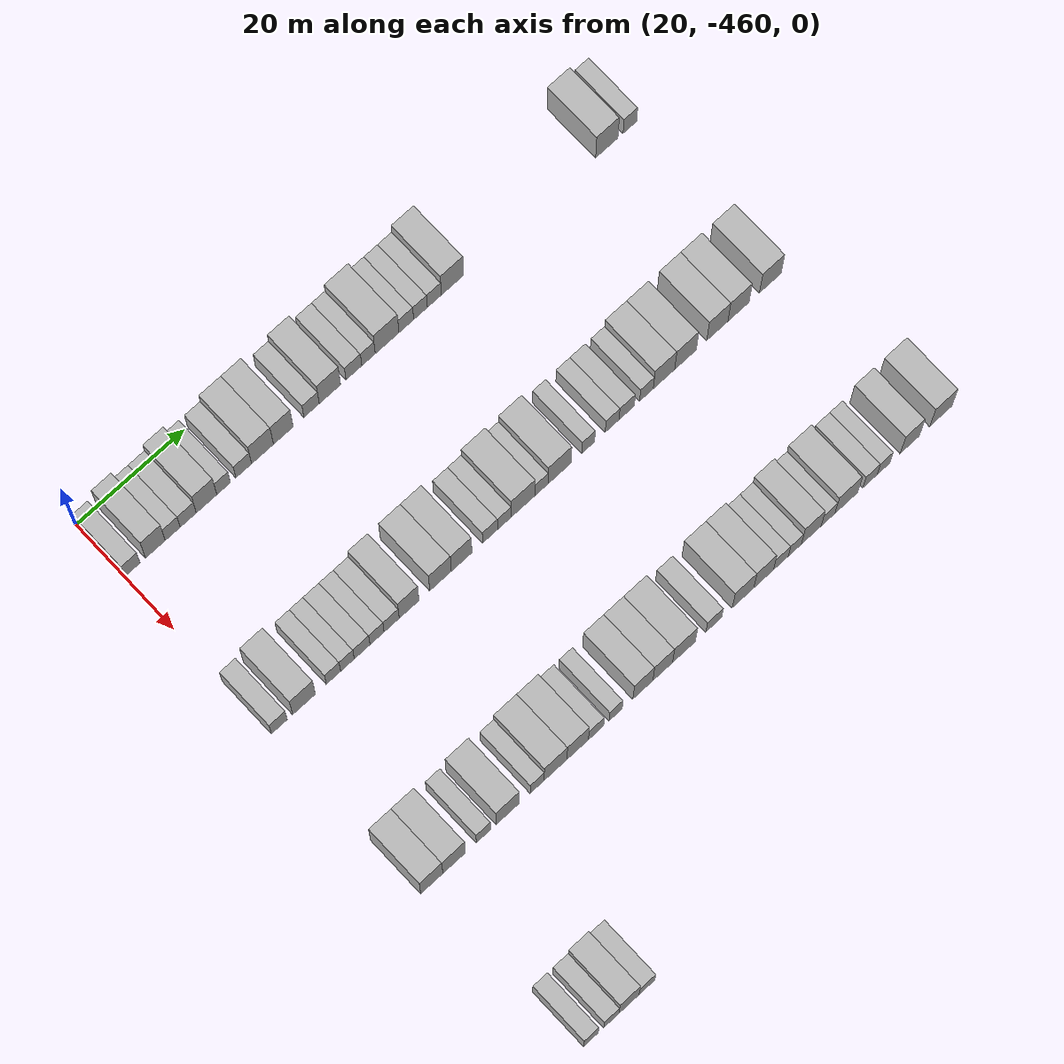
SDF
<sdf version="1.6">
 <world name="default">
  <model name="building_1">
   <static>1</static>
   <pose>25.0000 -458.5745 0 0.000000 0.000000 0.000000</pose>
   <link name="link">
    <pose>0 0 3.00 0 0 0</pose>
    <collision name="collision"><geometry><box><size>10.0000 2.8511 6.0000</size></box></geometry></collision>
    <visual name="visual">
     <cast_shadows>0</cast_shadows>
     <geometry><box><size>10.0000 2.8511 6.0000</size></box></geometry>
     <material>
      <script>
       <uri>model://HANNAS_wall/materials/scripts</uri>
       <uri>model://HANNAS_wall/materials/textures</uri>
       <name>vrc/HANNAS_wall</name>
      </script>
     </material>
    </visual>
   </link>
  </model>
  <model name="building_2">
   <static>1</static>
   <pose>25.0000 -454.3311 0 0.000000 0.000000 0.000000</pose>
   <link name="link">
    <pose>0 0 4.50 0 0 0</pose>
    <collision name="collision"><geometry><box><size>10.0000 3.6358 9.0000</size></box></geometry></collision>
    <visual name="visual">
     <cast_shadows>0</cast_shadows>
     <geometry><box><size>10.0000 3.6358 9.0000</size></box></geometry>
     <material>
      <script>
       <uri>model://HANNAS_wall/materials/scripts</uri>
       <uri>model://HANNAS_wall/materials/textures</uri>
       <name>vrc/HANNAS_wall</name>
      </script>
     </material>
    </visual>
   </link>
  </model>
  <model name="building_3">
   <static>1</static>
   <pose>25.0000 -451.1333 0 0.000000 0.000000 0.000000</pose>
   <link name="link">
    <pose>0 0 3.00 0 0 0</pose>
    <collision name="collision"><geometry><box><size>10.0000 2.7597 6.0000</size></box></geometry></collision>
    <visual name="visual">
     <cast_shadows>0</cast_shadows>
     <geometry><box><size>10.0000 2.7597 6.0000</size></box></geometry>
     <material>
      <script>
       <uri>model://HANNAS_wall/materials/scripts</uri>
       <uri>model://HANNAS_wall/materials/textures</uri>
       <name>vrc/HANNAS_wall</name>
      </script>
     </material>
    </visual>
   </link>
  </model>
  <model name="building_4">
   <static>1</static>
   <pose>25.0000 -448.2670 0 0.000000 0.000000 0.000000</pose>
   <link name="link">
    <pose>0 0 3.00 0 0 0</pose>
    <collision name="collision"><geometry><box><size>10.0000 2.9729 6.0000</size></box></geometry></collision>
    <visual name="visual">
     <cast_shadows>0</cast_shadows>
     <geometry><box><size>10.0000 2.9729 6.0000</size></box></geometry>
     <material>
      <script>
       <uri>model://HANNAS_wall/materials/scripts</uri>
       <uri>model://HANNAS_wall/materials/textures</uri>
       <name>vrc/HANNAS_wall</name>
      </script>
     </material>
    </visual>
   </link>
  </model>
  <model name="building_5">
   <static>1</static>
   <pose>25.0000 -444.8772 0 0.000000 0.000000 0.000000</pose>
   <link name="link">
    <pose>0 0 4.50 0 0 0</pose>
    <collision name="collision"><geometry><box><size>10.0000 3.8066 9.0000</size></box></geometry></collision>
    <visual name="visual">
     <cast_shadows>0</cast_shadows>
     <geometry><box><size>10.0000 3.8066 9.0000</size></box></geometry>
     <material>
      <script>
       <uri>model://HANNAS_wall/materials/scripts</uri>
       <uri>model://HANNAS_wall/materials/textures</uri>
       <name>vrc/HANNAS_wall</name>
      </script>
     </material>
    </visual>
   </link>
  </model>
  <model name="building_6">
   <static>1</static>
   <pose>25.0000 -441.7054 0 0.000000 0.000000 0.000000</pose>
   <link name="link">
    <pose>0 0 3.00 0 0 0</pose>
    <collision name="collision"><geometry><box><size>10.0000 2.5371 6.0000</size></box></geometry></collision>
    <visual name="visual">
     <cast_shadows>0</cast_shadows>
     <geometry><box><size>10.0000 2.5371 6.0000</size></box></geometry>
     <material>
      <script>
       <uri>model://HANNAS_wall/materials/scripts</uri>
       <uri>model://HANNAS_wall/materials/textures</uri>
       <name>vrc/HANNAS_wall</name>
      </script>
     </material>
    </visual>
   </link>
  </model>
  <model name="building_7">
   <static>1</static>
   <pose>25.0000 -437.9740 0 0.000000 0.000000 0.000000</pose>
   <link name="link">
    <pose>0 0 3.00 0 0 0</pose>
    <collision name="collision"><geometry><box><size>10.0000 2.9256 6.0000</size></box></geometry></collision>
    <visual name="visual">
     <cast_shadows>0</cast_shadows>
     <geometry><box><size>10.0000 2.9256 6.0000</size></box></geometry>
     <material>
      <script>
       <uri>model://HANNAS_wall/materials/scripts</uri>
       <uri>model://HANNAS_wall/materials/textures</uri>
       <name>vrc/HANNAS_wall</name>
      </script>
     </material>
    </visual>
   </link>
  </model>
  <model name="building_8">
   <static>1</static>
   <pose>25.0000 -434.4728 0 0.000000 0.000000 0.000000</pose>
   <link name="link">
    <pose>0 0 4.50 0 0 0</pose>
    <collision name="collision"><geometry><box><size>10.0000 4.0769 9.0000</size></box></geometry></collision>
    <visual name="visual">
     <cast_shadows>0</cast_shadows>
     <geometry><box><size>10.0000 4.0769 9.0000</size></box></geometry>
     <material>
      <script>
       <uri>model://HANNAS_wall/materials/scripts</uri>
       <uri>model://HANNAS_wall/materials/textures</uri>
       <name>vrc/HANNAS_wall</name>
      </script>
     </material>
    </visual>
   </link>
  </model>
  <model name="building_9">
   <static>1</static>
   <pose>25.0000 -430.5864 0 0.000000 0.000000 0.000000</pose>
   <link name="link">
    <pose>0 0 4.50 0 0 0</pose>
    <collision name="collision"><geometry><box><size>10.0000 3.6958 9.0000</size></box></geometry></collision>
    <visual name="visual">
     <cast_shadows>0</cast_shadows>
     <geometry><box><size>10.0000 3.6958 9.0000</size></box></geometry>
     <material>
      <script>
       <uri>model://HANNAS_wall/materials/scripts</uri>
       <uri>model://HANNAS_wall/materials/textures</uri>
       <name>vrc/HANNAS_wall</name>
      </script>
     </material>
    </visual>
   </link>
  </model>
  <model name="building_10">
   <static>1</static>
   <pose>25.0000 -425.3063 0 0.000000 0.000000 0.000000</pose>
   <link name="link">
    <pose>0 0 3.00 0 0 0</pose>
    <collision name="collision"><geometry><box><size>10.0000 2.8645 6.0000</size></box></geometry></collision>
    <visual name="visual">
     <cast_shadows>0</cast_shadows>
     <geometry><box><size>10.0000 2.8645 6.0000</size></box></geometry>
     <material>
      <script>
       <uri>model://HANNAS_wall/materials/scripts</uri>
       <uri>model://HANNAS_wall/materials/textures</uri>
       <name>vrc/HANNAS_wall</name>
      </script>
     </material>
    </visual>
   </link>
  </model>
  <model name="building_11">
   <static>1</static>
   <pose>25.0000 -421.8627 0 0.000000 0.000000 0.000000</pose>
   <link name="link">
    <pose>0 0 4.50 0 0 0</pose>
    <collision name="collision"><geometry><box><size>10.0000 4.0225 9.0000</size></box></geometry></collision>
    <visual name="visual">
     <cast_shadows>0</cast_shadows>
     <geometry><box><size>10.0000 4.0225 9.0000</size></box></geometry>
     <material>
      <script>
       <uri>model://HANNAS_wall/materials/scripts</uri>
       <uri>model://HANNAS_wall/materials/textures</uri>
       <name>vrc/HANNAS_wall</name>
      </script>
     </material>
    </visual>
   </link>
  </model>
  <model name="building_12">
   <static>1</static>
   <pose>25.0000 -417.3604 0 0.000000 0.000000 0.000000</pose>
   <link name="link">
    <pose>0 0 3.00 0 0 0</pose>
    <collision name="collision"><geometry><box><size>10.0000 2.9822 6.0000</size></box></geometry></collision>
    <visual name="visual">
     <cast_shadows>0</cast_shadows>
     <geometry><box><size>10.0000 2.9822 6.0000</size></box></geometry>
     <material>
      <script>
       <uri>model://HANNAS_wall/materials/scripts</uri>
       <uri>model://HANNAS_wall/materials/textures</uri>
       <name>vrc/HANNAS_wall</name>
      </script>
     </material>
    </visual>
   </link>
  </model>
  <model name="building_13">
   <static>1</static>
   <pose>25.0000 -414.6050 0 0.000000 0.000000 0.000000</pose>
   <link name="link">
    <pose>0 0 3.00 0 0 0</pose>
    <collision name="collision"><geometry><box><size>10.0000 2.5287 6.0000</size></box></geometry></collision>
    <visual name="visual">
     <cast_shadows>0</cast_shadows>
     <geometry><box><size>10.0000 2.5287 6.0000</size></box></geometry>
     <material>
      <script>
       <uri>model://HANNAS_wall/materials/scripts</uri>
       <uri>model://HANNAS_wall/materials/textures</uri>
       <name>vrc/HANNAS_wall</name>
      </script>
     </material>
    </visual>
   </link>
  </model>
  <model name="building_14">
   <static>1</static>
   <pose>25.0000 -411.1053 0 0.000000 0.000000 0.000000</pose>
   <link name="link">
    <pose>0 0 4.50 0 0 0</pose>
    <collision name="collision"><geometry><box><size>10.0000 4.4707 9.0000</size></box></geometry></collision>
    <visual name="visual">
     <cast_shadows>0</cast_shadows>
     <geometry><box><size>10.0000 4.4707 9.0000</size></box></geometry>
     <material>
      <script>
       <uri>model://HANNAS_wall/materials/scripts</uri>
       <uri>model://HANNAS_wall/materials/textures</uri>
       <name>vrc/HANNAS_wall</name>
      </script>
     </material>
    </visual>
   </link>
  </model>
  <model name="building_15">
   <static>1</static>
   <pose>25.0000 -407.4802 0 0.000000 0.000000 0.000000</pose>
   <link name="link">
    <pose>0 0 3.00 0 0 0</pose>
    <collision name="collision"><geometry><box><size>10.0000 2.7793 6.0000</size></box></geometry></collision>
    <visual name="visual">
     <cast_shadows>0</cast_shadows>
     <geometry><box><size>10.0000 2.7793 6.0000</size></box></geometry>
     <material>
      <script>
       <uri>model://HANNAS_wall/materials/scripts</uri>
       <uri>model://HANNAS_wall/materials/textures</uri>
       <name>vrc/HANNAS_wall</name>
      </script>
     </material>
    </visual>
   </link>
  </model>
  <model name="building_16">
   <static>1</static>
   <pose>25.0000 -404.7872 0 0.000000 0.000000 0.000000</pose>
   <link name="link">
    <pose>0 0 3.00 0 0 0</pose>
    <collision name="collision"><geometry><box><size>10.0000 2.6068 6.0000</size></box></geometry></collision>
    <visual name="visual">
     <cast_shadows>0</cast_shadows>
     <geometry><box><size>10.0000 2.6068 6.0000</size></box></geometry>
     <material>
      <script>
       <uri>model://HANNAS_wall/materials/scripts</uri>
       <uri>model://HANNAS_wall/materials/textures</uri>
       <name>vrc/HANNAS_wall</name>
      </script>
     </material>
    </visual>
   </link>
  </model>
  <model name="building_17">
   <static>1</static>
   <pose>25.0000 -402.1620 0 0.000000 0.000000 0.000000</pose>
   <link name="link">
    <pose>0 0 3.00 0 0 0</pose>
    <collision name="collision"><geometry><box><size>10.0000 2.6436 6.0000</size></box></geometry></collision>
    <visual name="visual">
     <cast_shadows>0</cast_shadows>
     <geometry><box><size>10.0000 2.6436 6.0000</size></box></geometry>
     <material>
      <script>
       <uri>model://HANNAS_wall/materials/scripts</uri>
       <uri>model://HANNAS_wall/materials/textures</uri>
       <name>vrc/HANNAS_wall</name>
      </script>
     </material>
    </visual>
   </link>
  </model>
  <model name="building_18">
   <static>1</static>
   <pose>25.0000 -398.7324 0 0.000000 0.000000 0.000000</pose>
   <link name="link">
    <pose>0 0 4.50 0 0 0</pose>
    <collision name="collision"><geometry><box><size>10.0000 4.2156 9.0000</size></box></geometry></collision>
    <visual name="visual">
     <cast_shadows>0</cast_shadows>
     <geometry><box><size>10.0000 4.2156 9.0000</size></box></geometry>
     <material>
      <script>
       <uri>model://HANNAS_wall/materials/scripts</uri>
       <uri>model://HANNAS_wall/materials/textures</uri>
       <name>vrc/HANNAS_wall</name>
      </script>
     </material>
    </visual>
   </link>
  </model>
  <model name="building_19">
   <static>1</static>
   <pose>25.0000 -369.1829 0 0.000000 0.000000 0.000000</pose>
   <link name="link">
    <pose>0 0 4.50 0 0 0</pose>
    <collision name="collision"><geometry><box><size>10.0000 4.2945 9.0000</size></box></geometry></collision>
    <visual name="visual">
     <cast_shadows>0</cast_shadows>
     <geometry><box><size>10.0000 4.2945 9.0000</size></box></geometry>
     <material>
      <script>
       <uri>model://HANNAS_wall/materials/scripts</uri>
       <uri>model://HANNAS_wall/materials/textures</uri>
       <name>vrc/HANNAS_wall</name>
      </script>
     </material>
    </visual>
   </link>
  </model>
  <model name="building_20">
   <static>1</static>
   <pose>25.0000 -364.7228 0 0.000000 0.000000 0.000000</pose>
   <link name="link">
    <pose>0 0 3.00 0 0 0</pose>
    <collision name="collision"><geometry><box><size>10.0000 2.6258 6.0000</size></box></geometry></collision>
    <visual name="visual">
     <cast_shadows>0</cast_shadows>
     <geometry><box><size>10.0000 2.6258 6.0000</size></box></geometry>
     <material>
      <script>
       <uri>model://HANNAS_wall/materials/scripts</uri>
       <uri>model://HANNAS_wall/materials/textures</uri>
       <name>vrc/HANNAS_wall</name>
      </script>
     </material>
    </visual>
   </link>
  </model>
  <model name="building_231">
   <static>1</static>
   <pose>55.0000 -458.5437 0 0.000000 0.000000 0.000000</pose>
   <link name="link">
    <pose>0 0 3.00 0 0 0</pose>
    <collision name="collision"><geometry><box><size>10.0000 2.9126 6.0000</size></box></geometry></collision>
    <visual name="visual">
     <cast_shadows>0</cast_shadows>
     <geometry><box><size>10.0000 2.9126 6.0000</size></box></geometry>
     <material>
      <script>
       <uri>model://HANNAS_wall/materials/scripts</uri>
       <uri>model://HANNAS_wall/materials/textures</uri>
       <name>vrc/HANNAS_wall</name>
      </script>
     </material>
    </visual>
   </link>
  </model>
  <model name="building_232">
   <static>1</static>
   <pose>55.0000 -453.9892 0 0.000000 0.000000 0.000000</pose>
   <link name="link">
    <pose>0 0 4.50 0 0 0</pose>
    <collision name="collision"><geometry><box><size>10.0000 4.1963 9.0000</size></box></geometry></collision>
    <visual name="visual">
     <cast_shadows>0</cast_shadows>
     <geometry><box><size>10.0000 4.1963 9.0000</size></box></geometry>
     <material>
      <script>
       <uri>model://HANNAS_wall/materials/scripts</uri>
       <uri>model://HANNAS_wall/materials/textures</uri>
       <name>vrc/HANNAS_wall</name>
      </script>
     </material>
    </visual>
   </link>
  </model>
  <model name="building_233">
   <static>1</static>
   <pose>55.0000 -448.5669 0 0.000000 0.000000 0.000000</pose>
   <link name="link">
    <pose>0 0 3.00 0 0 0</pose>
    <collision name="collision"><geometry><box><size>10.0000 2.6485 6.0000</size></box></geometry></collision>
    <visual name="visual">
     <cast_shadows>0</cast_shadows>
     <geometry><box><size>10.0000 2.6485 6.0000</size></box></geometry>
     <material>
      <script>
       <uri>model://HANNAS_wall/materials/scripts</uri>
       <uri>model://HANNAS_wall/materials/textures</uri>
       <name>vrc/HANNAS_wall</name>
      </script>
     </material>
    </visual>
   </link>
  </model>
  <model name="building_234">
   <static>1</static>
   <pose>55.0000 -445.9764 0 0.000000 0.000000 0.000000</pose>
   <link name="link">
    <pose>0 0 3.00 0 0 0</pose>
    <collision name="collision"><geometry><box><size>10.0000 2.5325 6.0000</size></box></geometry></collision>
    <visual name="visual">
     <cast_shadows>0</cast_shadows>
     <geometry><box><size>10.0000 2.5325 6.0000</size></box></geometry>
     <material>
      <script>
       <uri>model://HANNAS_wall/materials/scripts</uri>
       <uri>model://HANNAS_wall/materials/textures</uri>
       <name>vrc/HANNAS_wall</name>
      </script>
     </material>
    </visual>
   </link>
  </model>
  <model name="building_235">
   <static>1</static>
   <pose>55.0000 -443.2516 0 0.000000 0.000000 0.000000</pose>
   <link name="link">
    <pose>0 0 3.00 0 0 0</pose>
    <collision name="collision"><geometry><box><size>10.0000 2.9170 6.0000</size></box></geometry></collision>
    <visual name="visual">
     <cast_shadows>0</cast_shadows>
     <geometry><box><size>10.0000 2.9170 6.0000</size></box></geometry>
     <material>
      <script>
       <uri>model://HANNAS_wall/materials/scripts</uri>
       <uri>model://HANNAS_wall/materials/textures</uri>
       <name>vrc/HANNAS_wall</name>
      </script>
     </material>
    </visual>
   </link>
  </model>
  <model name="building_236">
   <static>1</static>
   <pose>55.0000 -440.4904 0 0.000000 0.000000 0.000000</pose>
   <link name="link">
    <pose>0 0 3.00 0 0 0</pose>
    <collision name="collision"><geometry><box><size>10.0000 2.6053 6.0000</size></box></geometry></collision>
    <visual name="visual">
     <cast_shadows>0</cast_shadows>
     <geometry><box><size>10.0000 2.6053 6.0000</size></box></geometry>
     <material>
      <script>
       <uri>model://HANNAS_wall/materials/scripts</uri>
       <uri>model://HANNAS_wall/materials/textures</uri>
       <name>vrc/HANNAS_wall</name>
      </script>
     </material>
    </visual>
   </link>
  </model>
  <model name="building_237">
   <static>1</static>
   <pose>55.0000 -437.7830 0 0.000000 0.000000 0.000000</pose>
   <link name="link">
    <pose>0 0 3.00 0 0 0</pose>
    <collision name="collision"><geometry><box><size>10.0000 2.8094 6.0000</size></box></geometry></collision>
    <visual name="visual">
     <cast_shadows>0</cast_shadows>
     <geometry><box><size>10.0000 2.8094 6.0000</size></box></geometry>
     <material>
      <script>
       <uri>model://HANNAS_wall/materials/scripts</uri>
       <uri>model://HANNAS_wall/materials/textures</uri>
       <name>vrc/HANNAS_wall</name>
      </script>
     </material>
    </visual>
   </link>
  </model>
  <model name="building_238">
   <static>1</static>
   <pose>55.0000 -434.5364 0 0.000000 0.000000 0.000000</pose>
   <link name="link">
    <pose>0 0 4.50 0 0 0</pose>
    <collision name="collision"><geometry><box><size>10.0000 3.6838 9.0000</size></box></geometry></collision>
    <visual name="visual">
     <cast_shadows>0</cast_shadows>
     <geometry><box><size>10.0000 3.6838 9.0000</size></box></geometry>
     <material>
      <script>
       <uri>model://HANNAS_wall/materials/scripts</uri>
       <uri>model://HANNAS_wall/materials/textures</uri>
       <name>vrc/HANNAS_wall</name>
      </script>
     </material>
    </visual>
   </link>
  </model>
  <model name="building_239">
   <static>1</static>
   <pose>55.0000 -428.6836 0 0.000000 0.000000 0.000000</pose>
   <link name="link">
    <pose>0 0 4.50 0 0 0</pose>
    <collision name="collision"><geometry><box><size>10.0000 4.0217 9.0000</size></box></geometry></collision>
    <visual name="visual">
     <cast_shadows>0</cast_shadows>
     <geometry><box><size>10.0000 4.0217 9.0000</size></box></geometry>
     <material>
      <script>
       <uri>model://HANNAS_wall/materials/scripts</uri>
       <uri>model://HANNAS_wall/materials/textures</uri>
       <name>vrc/HANNAS_wall</name>
      </script>
     </material>
    </visual>
   </link>
  </model>
  <model name="building_240">
   <static>1</static>
   <pose>55.0000 -424.7410 0 0.000000 0.000000 0.000000</pose>
   <link name="link">
    <pose>0 0 4.50 0 0 0</pose>
    <collision name="collision"><geometry><box><size>10.0000 3.8635 9.0000</size></box></geometry></collision>
    <visual name="visual">
     <cast_shadows>0</cast_shadows>
     <geometry><box><size>10.0000 3.8635 9.0000</size></box></geometry>
     <material>
      <script>
       <uri>model://HANNAS_wall/materials/scripts</uri>
       <uri>model://HANNAS_wall/materials/textures</uri>
       <name>vrc/HANNAS_wall</name>
      </script>
     </material>
    </visual>
   </link>
  </model>
  <model name="building_241">
   <static>1</static>
   <pose>55.0000 -419.4040 0 0.000000 0.000000 0.000000</pose>
   <link name="link">
    <pose>0 0 3.00 0 0 0</pose>
    <collision name="collision"><geometry><box><size>10.0000 2.8104 6.0000</size></box></geometry></collision>
    <visual name="visual">
     <cast_shadows>0</cast_shadows>
     <geometry><box><size>10.0000 2.8104 6.0000</size></box></geometry>
     <material>
      <script>
       <uri>model://HANNAS_wall/materials/scripts</uri>
       <uri>model://HANNAS_wall/materials/textures</uri>
       <name>vrc/HANNAS_wall</name>
      </script>
     </material>
    </visual>
   </link>
  </model>
  <model name="building_242">
   <static>1</static>
   <pose>55.0000 -416.7293 0 0.000000 0.000000 0.000000</pose>
   <link name="link">
    <pose>0 0 3.00 0 0 0</pose>
    <collision name="collision"><geometry><box><size>10.0000 2.5390 6.0000</size></box></geometry></collision>
    <visual name="visual">
     <cast_shadows>0</cast_shadows>
     <geometry><box><size>10.0000 2.5390 6.0000</size></box></geometry>
     <material>
      <script>
       <uri>model://HANNAS_wall/materials/scripts</uri>
       <uri>model://HANNAS_wall/materials/textures</uri>
       <name>vrc/HANNAS_wall</name>
      </script>
     </material>
    </visual>
   </link>
  </model>
  <model name="building_243">
   <static>1</static>
   <pose>55.0000 -413.2177 0 0.000000 0.000000 0.000000</pose>
   <link name="link">
    <pose>0 0 4.50 0 0 0</pose>
    <collision name="collision"><geometry><box><size>10.0000 4.4842 9.0000</size></box></geometry></collision>
    <visual name="visual">
     <cast_shadows>0</cast_shadows>
     <geometry><box><size>10.0000 4.4842 9.0000</size></box></geometry>
     <material>
      <script>
       <uri>model://HANNAS_wall/materials/scripts</uri>
       <uri>model://HANNAS_wall/materials/textures</uri>
       <name>vrc/HANNAS_wall</name>
      </script>
     </material>
    </visual>
   </link>
  </model>
  <model name="building_244">
   <static>1</static>
   <pose>55.0000 -409.7326 0 0.000000 0.000000 0.000000</pose>
   <link name="link">
    <pose>0 0 3.00 0 0 0</pose>
    <collision name="collision"><geometry><box><size>10.0000 2.4861 6.0000</size></box></geometry></collision>
    <visual name="visual">
     <cast_shadows>0</cast_shadows>
     <geometry><box><size>10.0000 2.4861 6.0000</size></box></geometry>
     <material>
      <script>
       <uri>model://HANNAS_wall/materials/scripts</uri>
       <uri>model://HANNAS_wall/materials/textures</uri>
       <name>vrc/HANNAS_wall</name>
      </script>
     </material>
    </visual>
   </link>
  </model>
  <model name="building_245">
   <static>1</static>
   <pose>55.0000 -406.3088 0 0.000000 0.000000 0.000000</pose>
   <link name="link">
    <pose>0 0 4.50 0 0 0</pose>
    <collision name="collision"><geometry><box><size>10.0000 4.3614 9.0000</size></box></geometry></collision>
    <visual name="visual">
     <cast_shadows>0</cast_shadows>
     <geometry><box><size>10.0000 4.3614 9.0000</size></box></geometry>
     <material>
      <script>
       <uri>model://HANNAS_wall/materials/scripts</uri>
       <uri>model://HANNAS_wall/materials/textures</uri>
       <name>vrc/HANNAS_wall</name>
      </script>
     </material>
    </visual>
   </link>
  </model>
  <model name="building_246">
   <static>1</static>
   <pose>55.0000 -400.9030 0 0.000000 0.000000 0.000000</pose>
   <link name="link">
    <pose>0 0 3.00 0 0 0</pose>
    <collision name="collision"><geometry><box><size>10.0000 2.4503 6.0000</size></box></geometry></collision>
    <visual name="visual">
     <cast_shadows>0</cast_shadows>
     <geometry><box><size>10.0000 2.4503 6.0000</size></box></geometry>
     <material>
      <script>
       <uri>model://HANNAS_wall/materials/scripts</uri>
       <uri>model://HANNAS_wall/materials/textures</uri>
       <name>vrc/HANNAS_wall</name>
      </script>
     </material>
    </visual>
   </link>
  </model>
  <model name="building_247">
   <static>1</static>
   <pose>55.0000 -396.3648 0 0.000000 0.000000 0.000000</pose>
   <link name="link">
    <pose>0 0 3.00 0 0 0</pose>
    <collision name="collision"><geometry><box><size>10.0000 2.6261 6.0000</size></box></geometry></collision>
    <visual name="visual">
     <cast_shadows>0</cast_shadows>
     <geometry><box><size>10.0000 2.6261 6.0000</size></box></geometry>
     <material>
      <script>
       <uri>model://HANNAS_wall/materials/scripts</uri>
       <uri>model://HANNAS_wall/materials/textures</uri>
       <name>vrc/HANNAS_wall</name>
      </script>
     </material>
    </visual>
   </link>
  </model>
  <model name="building_248">
   <static>1</static>
   <pose>55.0000 -393.5924 0 0.000000 0.000000 0.000000</pose>
   <link name="link">
    <pose>0 0 3.00 0 0 0</pose>
    <collision name="collision"><geometry><box><size>10.0000 2.9187 6.0000</size></box></geometry></collision>
    <visual name="visual">
     <cast_shadows>0</cast_shadows>
     <geometry><box><size>10.0000 2.9187 6.0000</size></box></geometry>
     <material>
      <script>
       <uri>model://HANNAS_wall/materials/scripts</uri>
       <uri>model://HANNAS_wall/materials/textures</uri>
       <name>vrc/HANNAS_wall</name>
      </script>
     </material>
    </visual>
   </link>
  </model>
  <model name="building_249">
   <static>1</static>
   <pose>55.0000 -389.8295 0 0.000000 0.000000 0.000000</pose>
   <link name="link">
    <pose>0 0 3.00 0 0 0</pose>
    <collision name="collision"><geometry><box><size>10.0000 2.6069 6.0000</size></box></geometry></collision>
    <visual name="visual">
     <cast_shadows>0</cast_shadows>
     <geometry><box><size>10.0000 2.6069 6.0000</size></box></geometry>
     <material>
      <script>
       <uri>model://HANNAS_wall/materials/scripts</uri>
       <uri>model://HANNAS_wall/materials/textures</uri>
       <name>vrc/HANNAS_wall</name>
      </script>
     </material>
    </visual>
   </link>
  </model>
  <model name="building_250">
   <static>1</static>
   <pose>55.0000 -386.4831 0 0.000000 0.000000 0.000000</pose>
   <link name="link">
    <pose>0 0 4.50 0 0 0</pose>
    <collision name="collision"><geometry><box><size>10.0000 4.0860 9.0000</size></box></geometry></collision>
    <visual name="visual">
     <cast_shadows>0</cast_shadows>
     <geometry><box><size>10.0000 4.0860 9.0000</size></box></geometry>
     <material>
      <script>
       <uri>model://HANNAS_wall/materials/scripts</uri>
       <uri>model://HANNAS_wall/materials/textures</uri>
       <name>vrc/HANNAS_wall</name>
      </script>
     </material>
    </visual>
   </link>
  </model>
  <model name="building_251">
   <static>1</static>
   <pose>55.0000 -382.3690 0 0.000000 0.000000 0.000000</pose>
   <link name="link">
    <pose>0 0 4.50 0 0 0</pose>
    <collision name="collision"><geometry><box><size>10.0000 4.1420 9.0000</size></box></geometry></collision>
    <visual name="visual">
     <cast_shadows>0</cast_shadows>
     <geometry><box><size>10.0000 4.1420 9.0000</size></box></geometry>
     <material>
      <script>
       <uri>model://HANNAS_wall/materials/scripts</uri>
       <uri>model://HANNAS_wall/materials/textures</uri>
       <name>vrc/HANNAS_wall</name>
      </script>
     </material>
    </visual>
   </link>
  </model>
  <model name="building_252">
   <static>1</static>
   <pose>55.0000 -376.2685 0 0.000000 0.000000 0.000000</pose>
   <link name="link">
    <pose>0 0 4.50 0 0 0</pose>
    <collision name="collision"><geometry><box><size>10.0000 4.0590 9.0000</size></box></geometry></collision>
    <visual name="visual">
     <cast_shadows>0</cast_shadows>
     <geometry><box><size>10.0000 4.0590 9.0000</size></box></geometry>
     <material>
      <script>
       <uri>model://HANNAS_wall/materials/scripts</uri>
       <uri>model://HANNAS_wall/materials/textures</uri>
       <name>vrc/HANNAS_wall</name>
      </script>
     </material>
    </visual>
   </link>
  </model>
  <model name="building_253">
   <static>1</static>
   <pose>55.0000 -372.2006 0 0.000000 0.000000 0.000000</pose>
   <link name="link">
    <pose>0 0 4.50 0 0 0</pose>
    <collision name="collision"><geometry><box><size>10.0000 4.0769 9.0000</size></box></geometry></collision>
    <visual name="visual">
     <cast_shadows>0</cast_shadows>
     <geometry><box><size>10.0000 4.0769 9.0000</size></box></geometry>
     <material>
      <script>
       <uri>model://HANNAS_wall/materials/scripts</uri>
       <uri>model://HANNAS_wall/materials/textures</uri>
       <name>vrc/HANNAS_wall</name>
      </script>
     </material>
    </visual>
   </link>
  </model>
  <model name="building_254">
   <static>1</static>
   <pose>55.0000 -366.0704 0 0.000000 0.000000 0.000000</pose>
   <link name="link">
    <pose>0 0 4.50 0 0 0</pose>
    <collision name="collision"><geometry><box><size>10.0000 4.1835 9.0000</size></box></geometry></collision>
    <visual name="visual">
     <cast_shadows>0</cast_shadows>
     <geometry><box><size>10.0000 4.1835 9.0000</size></box></geometry>
     <material>
      <script>
       <uri>model://HANNAS_wall/materials/scripts</uri>
       <uri>model://HANNAS_wall/materials/textures</uri>
       <name>vrc/HANNAS_wall</name>
      </script>
     </material>
    </visual>
   </link>
  </model>
  <model name="building_451">
   <static>1</static>
   <pose>85.0000 -457.9674 0 0.000000 0.000000 0.000000</pose>
   <link name="link">
    <pose>0 0 4.50 0 0 0</pose>
    <collision name="collision"><geometry><box><size>10.0000 4.0651 9.0000</size></box></geometry></collision>
    <visual name="visual">
     <cast_shadows>0</cast_shadows>
     <geometry><box><size>10.0000 4.0651 9.0000</size></box></geometry>
     <material>
      <script>
       <uri>model://HANNAS_wall/materials/scripts</uri>
       <uri>model://HANNAS_wall/materials/textures</uri>
       <name>vrc/HANNAS_wall</name>
      </script>
     </material>
    </visual>
   </link>
  </model>
  <model name="building_452">
   <static>1</static>
   <pose>85.0000 -453.8610 0 0.000000 0.000000 0.000000</pose>
   <link name="link">
    <pose>0 0 4.50 0 0 0</pose>
    <collision name="collision"><geometry><box><size>10.0000 4.1477 9.0000</size></box></geometry></collision>
    <visual name="visual">
     <cast_shadows>0</cast_shadows>
     <geometry><box><size>10.0000 4.1477 9.0000</size></box></geometry>
     <material>
      <script>
       <uri>model://HANNAS_wall/materials/scripts</uri>
       <uri>model://HANNAS_wall/materials/textures</uri>
       <name>vrc/HANNAS_wall</name>
      </script>
     </material>
    </visual>
   </link>
  </model>
  <model name="building_453">
   <static>1</static>
   <pose>85.0000 -448.4530 0 0.000000 0.000000 0.000000</pose>
   <link name="link">
    <pose>0 0 3.00 0 0 0</pose>
    <collision name="collision"><geometry><box><size>10.0000 2.6683 6.0000</size></box></geometry></collision>
    <visual name="visual">
     <cast_shadows>0</cast_shadows>
     <geometry><box><size>10.0000 2.6683 6.0000</size></box></geometry>
     <material>
      <script>
       <uri>model://HANNAS_wall/materials/scripts</uri>
       <uri>model://HANNAS_wall/materials/textures</uri>
       <name>vrc/HANNAS_wall</name>
      </script>
     </material>
    </visual>
   </link>
  </model>
  <model name="building_454">
   <static>1</static>
   <pose>85.0000 -443.9668 0 0.000000 0.000000 0.000000</pose>
   <link name="link">
    <pose>0 0 4.50 0 0 0</pose>
    <collision name="collision"><geometry><box><size>10.0000 4.3042 9.0000</size></box></geometry></collision>
    <visual name="visual">
     <cast_shadows>0</cast_shadows>
     <geometry><box><size>10.0000 4.3042 9.0000</size></box></geometry>
     <material>
      <script>
       <uri>model://HANNAS_wall/materials/scripts</uri>
       <uri>model://HANNAS_wall/materials/textures</uri>
       <name>vrc/HANNAS_wall</name>
      </script>
     </material>
    </visual>
   </link>
  </model>
  <model name="building_455">
   <static>1</static>
   <pose>85.0000 -438.5294 0 0.000000 0.000000 0.000000</pose>
   <link name="link">
    <pose>0 0 3.00 0 0 0</pose>
    <collision name="collision"><geometry><box><size>10.0000 2.5705 6.0000</size></box></geometry></collision>
    <visual name="visual">
     <cast_shadows>0</cast_shadows>
     <geometry><box><size>10.0000 2.5705 6.0000</size></box></geometry>
     <material>
      <script>
       <uri>model://HANNAS_wall/materials/scripts</uri>
       <uri>model://HANNAS_wall/materials/textures</uri>
       <name>vrc/HANNAS_wall</name>
      </script>
     </material>
    </visual>
   </link>
  </model>
  <model name="building_456">
   <static>1</static>
   <pose>85.0000 -435.1210 0 0.000000 0.000000 0.000000</pose>
   <link name="link">
    <pose>0 0 4.50 0 0 0</pose>
    <collision name="collision"><geometry><box><size>10.0000 4.2462 9.0000</size></box></geometry></collision>
    <visual name="visual">
     <cast_shadows>0</cast_shadows>
     <geometry><box><size>10.0000 4.2462 9.0000</size></box></geometry>
     <material>
      <script>
       <uri>model://HANNAS_wall/materials/scripts</uri>
       <uri>model://HANNAS_wall/materials/textures</uri>
       <name>vrc/HANNAS_wall</name>
      </script>
     </material>
    </visual>
   </link>
  </model>
  <model name="building_457">
   <static>1</static>
   <pose>85.0000 -430.9979 0 0.000000 0.000000 0.000000</pose>
   <link name="link">
    <pose>0 0 4.50 0 0 0</pose>
    <collision name="collision"><geometry><box><size>10.0000 4.0000 9.0000</size></box></geometry></collision>
    <visual name="visual">
     <cast_shadows>0</cast_shadows>
     <geometry><box><size>10.0000 4.0000 9.0000</size></box></geometry>
     <material>
      <script>
       <uri>model://HANNAS_wall/materials/scripts</uri>
       <uri>model://HANNAS_wall/materials/textures</uri>
       <name>vrc/HANNAS_wall</name>
      </script>
     </material>
    </visual>
   </link>
  </model>
  <model name="building_458">
   <static>1</static>
   <pose>85.0000 -427.5699 0 0.000000 0.000000 0.000000</pose>
   <link name="link">
    <pose>0 0 3.00 0 0 0</pose>
    <collision name="collision"><geometry><box><size>10.0000 2.8560 6.0000</size></box></geometry></collision>
    <visual name="visual">
     <cast_shadows>0</cast_shadows>
     <geometry><box><size>10.0000 2.8560 6.0000</size></box></geometry>
     <material>
      <script>
       <uri>model://HANNAS_wall/materials/scripts</uri>
       <uri>model://HANNAS_wall/materials/textures</uri>
       <name>vrc/HANNAS_wall</name>
      </script>
     </material>
    </visual>
   </link>
  </model>
  <model name="building_459">
   <static>1</static>
   <pose>85.0000 -423.9197 0 0.000000 0.000000 0.000000</pose>
   <link name="link">
    <pose>0 0 3.00 0 0 0</pose>
    <collision name="collision"><geometry><box><size>10.0000 2.4444 6.0000</size></box></geometry></collision>
    <visual name="visual">
     <cast_shadows>0</cast_shadows>
     <geometry><box><size>10.0000 2.4444 6.0000</size></box></geometry>
     <material>
      <script>
       <uri>model://HANNAS_wall/materials/scripts</uri>
       <uri>model://HANNAS_wall/materials/textures</uri>
       <name>vrc/HANNAS_wall</name>
      </script>
     </material>
    </visual>
   </link>
  </model>
  <model name="building_460">
   <static>1</static>
   <pose>85.0000 -418.8235 0 0.000000 0.000000 0.000000</pose>
   <link name="link">
    <pose>0 0 4.50 0 0 0</pose>
    <collision name="collision"><geometry><box><size>10.0000 3.7480 9.0000</size></box></geometry></collision>
    <visual name="visual">
     <cast_shadows>0</cast_shadows>
     <geometry><box><size>10.0000 3.7480 9.0000</size></box></geometry>
     <material>
      <script>
       <uri>model://HANNAS_wall/materials/scripts</uri>
       <uri>model://HANNAS_wall/materials/textures</uri>
       <name>vrc/HANNAS_wall</name>
      </script>
     </material>
    </visual>
   </link>
  </model>
  <model name="building_461">
   <static>1</static>
   <pose>85.0000 -415.0959 0 0.000000 0.000000 0.000000</pose>
   <link name="link">
    <pose>0 0 4.50 0 0 0</pose>
    <collision name="collision"><geometry><box><size>10.0000 3.7073 9.0000</size></box></geometry></collision>
    <visual name="visual">
     <cast_shadows>0</cast_shadows>
     <geometry><box><size>10.0000 3.7073 9.0000</size></box></geometry>
     <material>
      <script>
       <uri>model://HANNAS_wall/materials/scripts</uri>
       <uri>model://HANNAS_wall/materials/textures</uri>
       <name>vrc/HANNAS_wall</name>
      </script>
     </material>
    </visual>
   </link>
  </model>
  <model name="building_462">
   <static>1</static>
   <pose>85.0000 -411.1033 0 0.000000 0.000000 0.000000</pose>
   <link name="link">
    <pose>0 0 4.50 0 0 0</pose>
    <collision name="collision"><geometry><box><size>10.0000 4.2780 9.0000</size></box></geometry></collision>
    <visual name="visual">
     <cast_shadows>0</cast_shadows>
     <geometry><box><size>10.0000 4.2780 9.0000</size></box></geometry>
     <material>
      <script>
       <uri>model://HANNAS_wall/materials/scripts</uri>
       <uri>model://HANNAS_wall/materials/textures</uri>
       <name>vrc/HANNAS_wall</name>
      </script>
     </material>
    </visual>
   </link>
  </model>
  <model name="building_463">
   <static>1</static>
   <pose>85.0000 -405.4726 0 0.000000 0.000000 0.000000</pose>
   <link name="link">
    <pose>0 0 3.00 0 0 0</pose>
    <collision name="collision"><geometry><box><size>10.0000 2.9832 6.0000</size></box></geometry></collision>
    <visual name="visual">
     <cast_shadows>0</cast_shadows>
     <geometry><box><size>10.0000 2.9832 6.0000</size></box></geometry>
     <material>
      <script>
       <uri>model://HANNAS_wall/materials/scripts</uri>
       <uri>model://HANNAS_wall/materials/textures</uri>
       <name>vrc/HANNAS_wall</name>
      </script>
     </material>
    </visual>
   </link>
  </model>
  <model name="building_464">
   <static>1</static>
   <pose>85.0000 -399.9542 0 0.000000 0.000000 0.000000</pose>
   <link name="link">
    <pose>0 0 4.50 0 0 0</pose>
    <collision name="collision"><geometry><box><size>10.0000 4.0537 9.0000</size></box></geometry></collision>
    <visual name="visual">
     <cast_shadows>0</cast_shadows>
     <geometry><box><size>10.0000 4.0537 9.0000</size></box></geometry>
     <material>
      <script>
       <uri>model://HANNAS_wall/materials/scripts</uri>
       <uri>model://HANNAS_wall/materials/textures</uri>
       <name>vrc/HANNAS_wall</name>
      </script>
     </material>
    </visual>
   </link>
  </model>
  <model name="building_465">
   <static>1</static>
   <pose>85.0000 -396.0556 0 0.000000 0.000000 0.000000</pose>
   <link name="link">
    <pose>0 0 4.50 0 0 0</pose>
    <collision name="collision"><geometry><box><size>10.0000 3.7435 9.0000</size></box></geometry></collision>
    <visual name="visual">
     <cast_shadows>0</cast_shadows>
     <geometry><box><size>10.0000 3.7435 9.0000</size></box></geometry>
     <material>
      <script>
       <uri>model://HANNAS_wall/materials/scripts</uri>
       <uri>model://HANNAS_wall/materials/textures</uri>
       <name>vrc/HANNAS_wall</name>
      </script>
     </material>
    </visual>
   </link>
  </model>
  <model name="building_466">
   <static>1</static>
   <pose>85.0000 -392.7587 0 0.000000 0.000000 0.000000</pose>
   <link name="link">
    <pose>0 0 3.00 0 0 0</pose>
    <collision name="collision"><geometry><box><size>10.0000 2.8502 6.0000</size></box></geometry></collision>
    <visual name="visual">
     <cast_shadows>0</cast_shadows>
     <geometry><box><size>10.0000 2.8502 6.0000</size></box></geometry>
     <material>
      <script>
       <uri>model://HANNAS_wall/materials/scripts</uri>
       <uri>model://HANNAS_wall/materials/textures</uri>
       <name>vrc/HANNAS_wall</name>
      </script>
     </material>
    </visual>
   </link>
  </model>
  <model name="building_467">
   <static>1</static>
   <pose>85.0000 -390.0997 0 0.000000 0.000000 0.000000</pose>
   <link name="link">
    <pose>0 0 3.00 0 0 0</pose>
    <collision name="collision"><geometry><box><size>10.0000 2.4678 6.0000</size></box></geometry></collision>
    <visual name="visual">
     <cast_shadows>0</cast_shadows>
     <geometry><box><size>10.0000 2.4678 6.0000</size></box></geometry>
     <material>
      <script>
       <uri>model://HANNAS_wall/materials/scripts</uri>
       <uri>model://HANNAS_wall/materials/textures</uri>
       <name>vrc/HANNAS_wall</name>
      </script>
     </material>
    </visual>
   </link>
  </model>
  <model name="building_468">
   <static>1</static>
   <pose>85.0000 -386.9747 0 0.000000 0.000000 0.000000</pose>
   <link name="link">
    <pose>0 0 4.50 0 0 0</pose>
    <collision name="collision"><geometry><box><size>10.0000 3.7822 9.0000</size></box></geometry></collision>
    <visual name="visual">
     <cast_shadows>0</cast_shadows>
     <geometry><box><size>10.0000 3.7822 9.0000</size></box></geometry>
     <material>
      <script>
       <uri>model://HANNAS_wall/materials/scripts</uri>
       <uri>model://HANNAS_wall/materials/textures</uri>
       <name>vrc/HANNAS_wall</name>
      </script>
     </material>
    </visual>
   </link>
  </model>
  <model name="building_469">
   <static>1</static>
   <pose>85.0000 -383.7642 0 0.000000 0.000000 0.000000</pose>
   <link name="link">
    <pose>0 0 3.00 0 0 0</pose>
    <collision name="collision"><geometry><box><size>10.0000 2.6388 6.0000</size></box></geometry></collision>
    <visual name="visual">
     <cast_shadows>0</cast_shadows>
     <geometry><box><size>10.0000 2.6388 6.0000</size></box></geometry>
     <material>
      <script>
       <uri>model://HANNAS_wall/materials/scripts</uri>
       <uri>model://HANNAS_wall/materials/textures</uri>
       <name>vrc/HANNAS_wall</name>
      </script>
     </material>
    </visual>
   </link>
  </model>
  <model name="building_470">
   <static>1</static>
   <pose>85.0000 -380.2651 0 0.000000 0.000000 0.000000</pose>
   <link name="link">
    <pose>0 0 4.50 0 0 0</pose>
    <collision name="collision"><geometry><box><size>10.0000 4.3594 9.0000</size></box></geometry></collision>
    <visual name="visual">
     <cast_shadows>0</cast_shadows>
     <geometry><box><size>10.0000 4.3594 9.0000</size></box></geometry>
     <material>
      <script>
       <uri>model://HANNAS_wall/materials/scripts</uri>
       <uri>model://HANNAS_wall/materials/textures</uri>
       <name>vrc/HANNAS_wall</name>
      </script>
     </material>
    </visual>
   </link>
  </model>
  <model name="building_471">
   <static>1</static>
   <pose>85.0000 -375.7054 0 0.000000 0.000000 0.000000</pose>
   <link name="link">
    <pose>0 0 3.00 0 0 0</pose>
    <collision name="collision"><geometry><box><size>10.0000 2.7601 6.0000</size></box></geometry></collision>
    <visual name="visual">
     <cast_shadows>0</cast_shadows>
     <geometry><box><size>10.0000 2.7601 6.0000</size></box></geometry>
     <material>
      <script>
       <uri>model://HANNAS_wall/materials/scripts</uri>
       <uri>model://HANNAS_wall/materials/textures</uri>
       <name>vrc/HANNAS_wall</name>
      </script>
     </material>
    </visual>
   </link>
  </model>
  <model name="building_472">
   <static>1</static>
   <pose>85.0000 -373.1173 0 0.000000 0.000000 0.000000</pose>
   <link name="link">
    <pose>0 0 3.00 0 0 0</pose>
    <collision name="collision"><geometry><box><size>10.0000 2.4161 6.0000</size></box></geometry></collision>
    <visual name="visual">
     <cast_shadows>0</cast_shadows>
     <geometry><box><size>10.0000 2.4161 6.0000</size></box></geometry>
     <material>
      <script>
       <uri>model://HANNAS_wall/materials/scripts</uri>
       <uri>model://HANNAS_wall/materials/textures</uri>
       <name>vrc/HANNAS_wall</name>
      </script>
     </material>
    </visual>
   </link>
  </model>
  <model name="building_473">
   <static>1</static>
   <pose>85.0000 -368.0572 0 0.000000 0.000000 0.000000</pose>
   <link name="link">
    <pose>0 0 4.50 0 0 0</pose>
    <collision name="collision"><geometry><box><size>10.0000 3.7041 9.0000</size></box></geometry></collision>
    <visual name="visual">
     <cast_shadows>0</cast_shadows>
     <geometry><box><size>10.0000 3.7041 9.0000</size></box></geometry>
     <material>
      <script>
       <uri>model://HANNAS_wall/materials/scripts</uri>
       <uri>model://HANNAS_wall/materials/textures</uri>
       <name>vrc/HANNAS_wall</name>
      </script>
     </material>
    </visual>
   </link>
  </model>
  <model name="building_474">
   <static>1</static>
   <pose>85.0000 -362.0698 0 0.000000 0.000000 0.000000</pose>
   <link name="link">
    <pose>0 0 4.50 0 0 0</pose>
    <collision name="collision"><geometry><box><size>10.0000 4.2706 9.0000</size></box></geometry></collision>
    <visual name="visual">
     <cast_shadows>0</cast_shadows>
     <geometry><box><size>10.0000 4.2706 9.0000</size></box></geometry>
     <material>
      <script>
       <uri>model://HANNAS_wall/materials/scripts</uri>
       <uri>model://HANNAS_wall/materials/textures</uri>
       <name>vrc/HANNAS_wall</name>
      </script>
     </material>
    </visual>
   </link>
  </model>
  <model name="building_675">
   <static>1</static>
   <pose>115.0000 -456.6675 0 0.000000 0.000000 0.000000</pose>
   <link name="link">
    <pose>0 0 3.00 0 0 0</pose>
    <collision name="collision"><geometry><box><size>10.0000 2.6650 6.0000</size></box></geometry></collision>
    <visual name="visual">
     <cast_shadows>0</cast_shadows>
     <geometry><box><size>10.0000 2.6650 6.0000</size></box></geometry>
     <material>
      <script>
       <uri>model://HANNAS_wall/materials/scripts</uri>
       <uri>model://HANNAS_wall/materials/textures</uri>
       <name>vrc/HANNAS_wall</name>
      </script>
     </material>
    </visual>
   </link>
  </model>
  <model name="building_676">
   <static>1</static>
   <pose>115.0000 -452.9411 0 0.000000 0.000000 0.000000</pose>
   <link name="link">
    <pose>0 0 3.00 0 0 0</pose>
    <collision name="collision"><geometry><box><size>10.0000 2.7879 6.0000</size></box></geometry></collision>
    <visual name="visual">
     <cast_shadows>0</cast_shadows>
     <geometry><box><size>10.0000 2.7879 6.0000</size></box></geometry>
     <material>
      <script>
       <uri>model://HANNAS_wall/materials/scripts</uri>
       <uri>model://HANNAS_wall/materials/textures</uri>
       <name>vrc/HANNAS_wall</name>
      </script>
     </material>
    </visual>
   </link>
  </model>
  <model name="building_677">
   <static>1</static>
   <pose>115.0000 -449.6906 0 0.000000 0.000000 0.000000</pose>
   <link name="link">
    <pose>0 0 4.50 0 0 0</pose>
    <collision name="collision"><geometry><box><size>10.0000 3.7130 9.0000</size></box></geometry></collision>
    <visual name="visual">
     <cast_shadows>0</cast_shadows>
     <geometry><box><size>10.0000 3.7130 9.0000</size></box></geometry>
     <material>
      <script>
       <uri>model://HANNAS_wall/materials/scripts</uri>
       <uri>model://HANNAS_wall/materials/textures</uri>
       <name>vrc/HANNAS_wall</name>
      </script>
     </material>
    </visual>
   </link>
  </model>
  <model name="building_678">
   <static>1</static>
   <pose>115.0000 -446.3833 0 0.000000 0.000000 0.000000</pose>
   <link name="link">
    <pose>0 0 3.00 0 0 0</pose>
    <collision name="collision"><geometry><box><size>10.0000 2.9016 6.0000</size></box></geometry></collision>
    <visual name="visual">
     <cast_shadows>0</cast_shadows>
     <geometry><box><size>10.0000 2.9016 6.0000</size></box></geometry>
     <material>
      <script>
       <uri>model://HANNAS_wall/materials/scripts</uri>
       <uri>model://HANNAS_wall/materials/textures</uri>
       <name>vrc/HANNAS_wall</name>
      </script>
     </material>
    </visual>
   </link>
  </model>
 </world>
</sdf>
